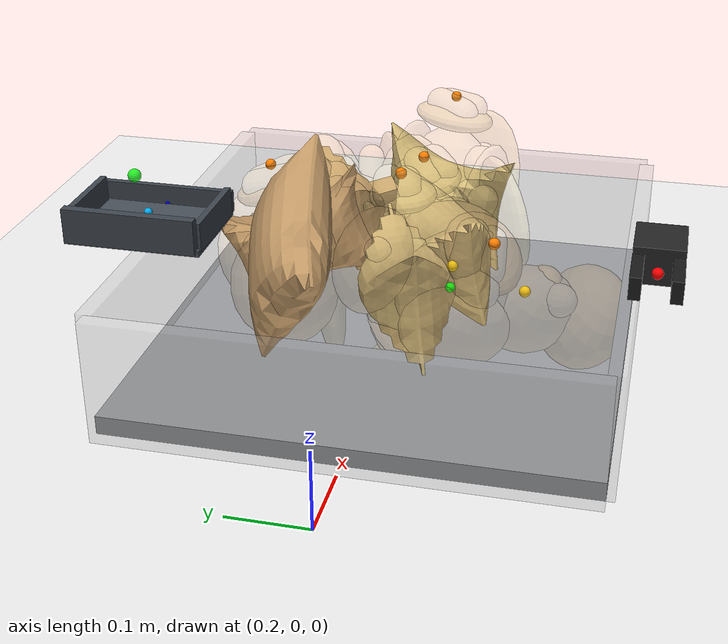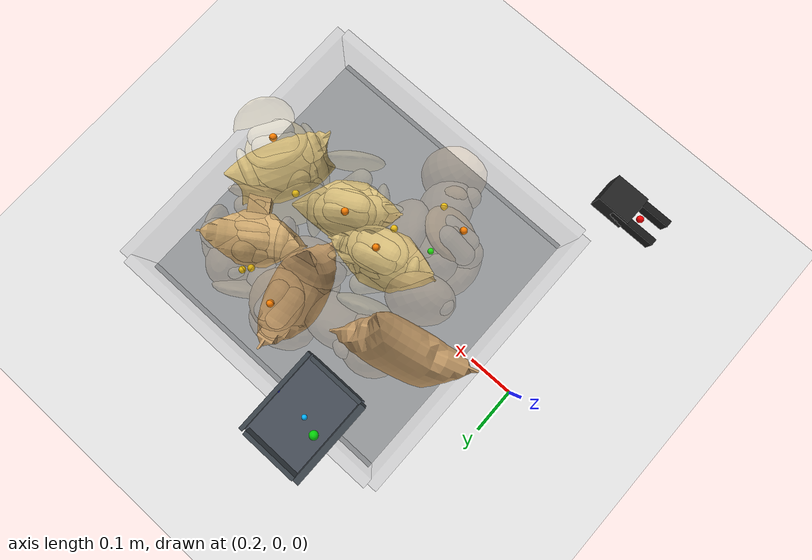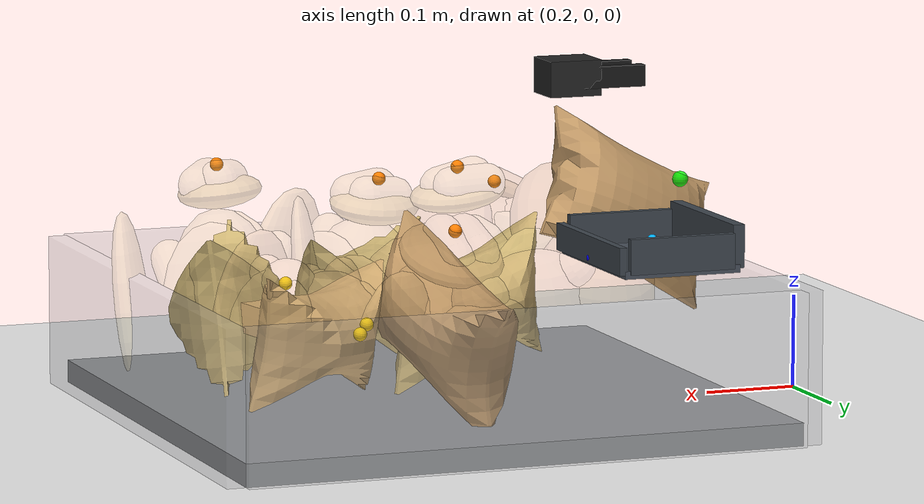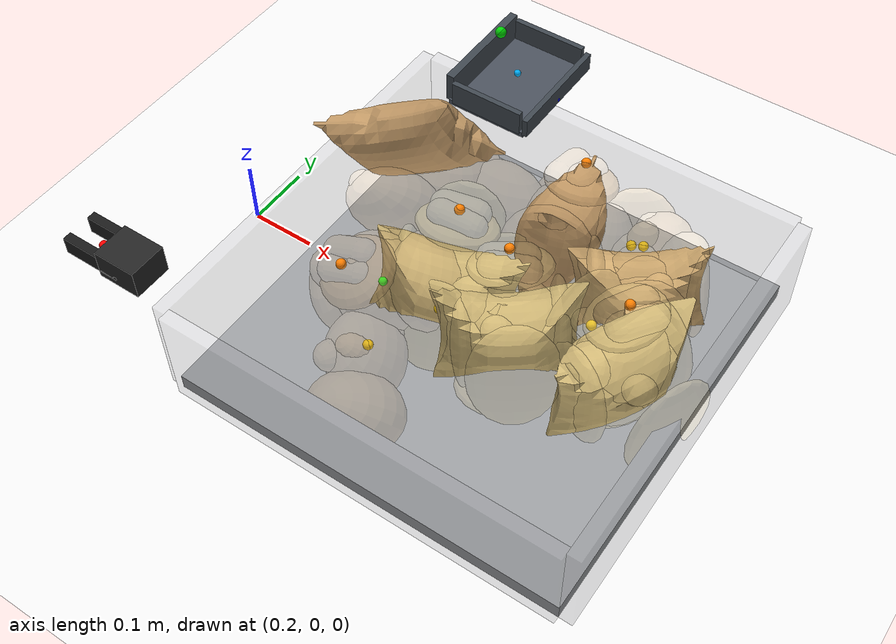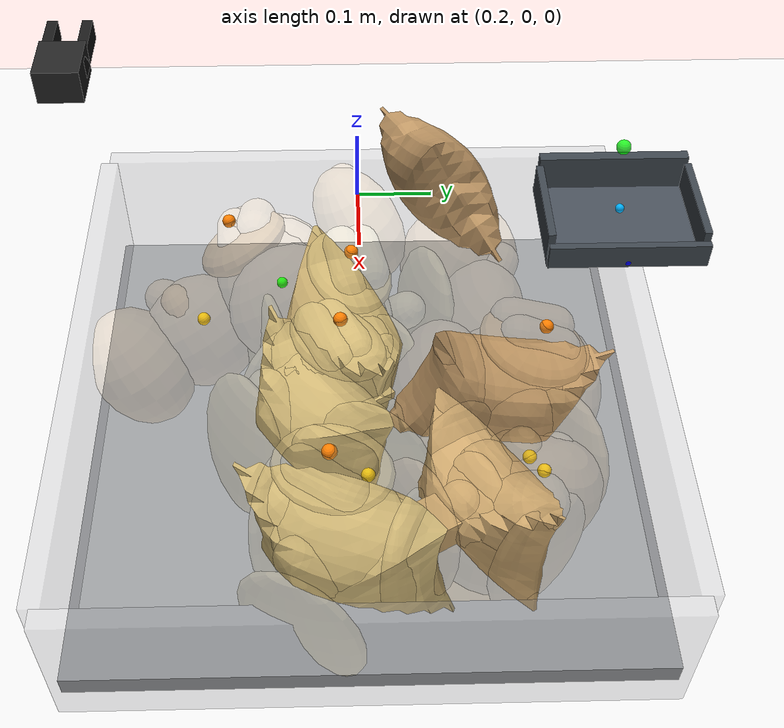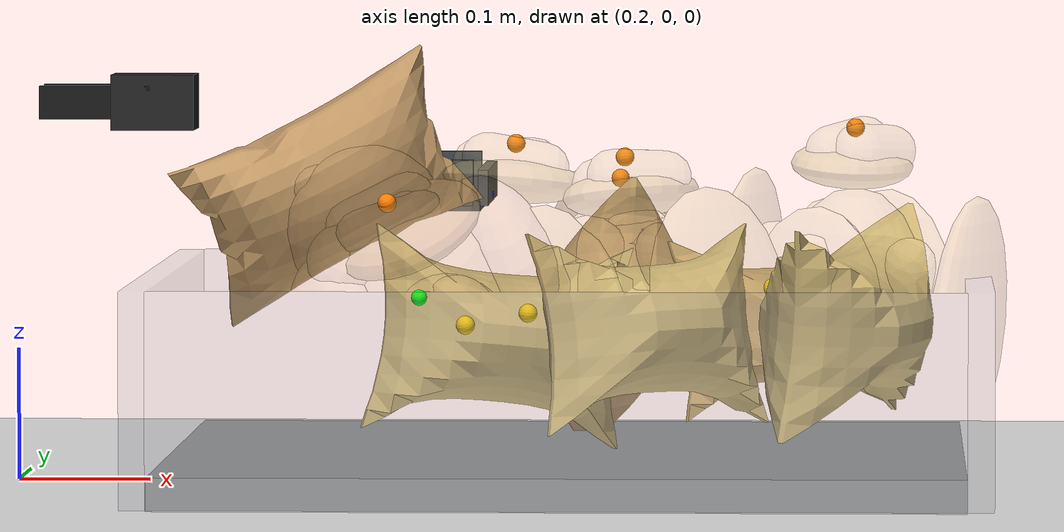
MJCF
<mujoco model="eccentric_fill_seed11">
  <compiler angle="radian" coordinate="local" inertiafromgeom="true" meshdir="D:/Michael/2025/01.Research/01.Parceldetection/16.Pybullet/bullet3-master (1)/bullet3-master/examples/pybullet/examples/DeformableTest/Sackcodex2/object"/>
  <option timestep="0.002" gravity="0 0 -9.81" integrator="implicitfast" iterations="100" tolerance="1e-8"/>
  <size memory="768M" nconmax="12000"/>

  <visual>
    <global azimuth="128" elevation="-20" offwidth="1280" offheight="720"/>
    <headlight ambient="0.34 0.34 0.34" diffuse="0.78 0.78 0.78" specular="0.15 0.15 0.15"/>
    <rgba haze="0.11 0.13 0.18 1"/>
  </visual>

  <default>
    <geom condim="4" friction="1.15 0.03 0.01" margin="0.003" solimp="0.93 0.98 0.003" solref="0.012 1"/>
    <joint damping="1.2" armature="0.002"/>
    <position kp="2500" forcelimited="true" forcerange="-420 420"/>
    <motor ctrllimited="true"/>
  </default>

  <asset>
    <mesh name="sack_0_visual_mesh" file="sack6Apply.obj" scale="0.0774 0.0774 0.0817"/>
    <mesh name="sack_1_visual_mesh" file="sack10.obj" scale="0.0697 0.0697 0.0726"/>
    <mesh name="sack_2_visual_mesh" file="sack3.obj" scale="0.0773 0.0773 0.0816"/>
    <mesh name="sack_3_visual_mesh" file="sack8.obj" scale="0.0753 0.0753 0.0807"/>
    <mesh name="sack_4_visual_mesh" file="sack9.obj" scale="0.0739 0.0739 0.0798"/>
    <mesh name="sack_5_visual_mesh" file="sack8.obj" scale="0.0764 0.0764 0.0839"/>
  </asset>

  <worldbody>
    <light name="key" pos="0.85 0.15 1.8" dir="-0.2 -0.1 -1" directional="true"/>
    <geom name="floor" type="plane" size="2 2 0.1" rgba="0.93 0.93 0.93 1"/>
    <geom name="work_pad" type="box" pos="0.62 0 0.012" size="0.30 0.30 0.012" rgba="0.60 0.61 0.62 1" friction="1.4 0.05 0.01"/>
    <geom name="corral_front" type="box" pos="0.93 0.00 0.08" size="0.010 0.30 0.08" rgba="0.55 0.55 0.58 0.22" friction="1.0 0.03 0.01"/>
    <geom name="corral_back" type="box" pos="0.31 0.00 0.08" size="0.010 0.30 0.08" rgba="0.55 0.55 0.58 0.18" friction="1.0 0.03 0.01"/>
    <geom name="corral_left" type="box" pos="0.62 0.30 0.08" size="0.30 0.010 0.08" rgba="0.55 0.55 0.58 0.14" friction="1.0 0.03 0.01"/>
    <geom name="corral_right" type="box" pos="0.62 -0.30 0.08" size="0.30 0.010 0.08" rgba="0.55 0.55 0.58 0.14" friction="1.0 0.03 0.01"/>
    <camera name="overview" pos="1.22 0.00 0.92" xyaxes="0 1 0 -0.46 0 0.88"/>

    <body name="gripper_mocap" mocap="true" pos="0.36 -0.33 0.30" quat="0.707107 0 -0.707107 0"/>
    <body name="scoop_mocap" mocap="true" pos="0.42 0.28 0.20" quat="1 0 0 0"/>

    <body name="gripper_ctrl_base" pos="0.36 -0.33 0.30">
      <inertial pos="0 0 0" mass="0.001" diaginertia="1e-6 1e-6 1e-6"/>
      <joint name="gripper_ctrl_x" type="slide" axis="1 0 0" limited="true" range="0.20 1.00"/>
      <body name="gripper_ctrl_y_body">
        <inertial pos="0 0 0" mass="0.001" diaginertia="1e-6 1e-6 1e-6"/>
        <joint name="gripper_ctrl_y" type="slide" axis="0 1 0" limited="true" range="-0.60 0.60"/>
        <body name="gripper_ctrl_z_body">
          <inertial pos="0 0 0" mass="0.001" diaginertia="1e-6 1e-6 1e-6"/>
          <joint name="gripper_ctrl_z" type="slide" axis="0 0 1" limited="true" range="0.04 0.70"/>
          <body name="gripper_ctrl_yaw_body">
            <inertial pos="0 0 0" mass="0.001" diaginertia="1e-6 1e-6 1e-6"/>
            <joint name="gripper_ctrl_yaw" type="hinge" axis="0 0 1" limited="true" range="-3.1416 3.1416"/>
            <body name="gripper_ctrl_pitch_body">
              <inertial pos="0 0 0" mass="0.001" diaginertia="1e-6 1e-6 1e-6"/>
              <joint name="gripper_ctrl_pitch" type="hinge" axis="0 1 0" limited="true" range="-3.1416 3.1416"/>
              <body name="gripper_ctrl_roll_body">
                <inertial pos="0 0 0" mass="0.001" diaginertia="1e-6 1e-6 1e-6"/>
                <joint name="gripper_ctrl_roll" type="hinge" axis="1 0 0" limited="true" range="-3.1416 3.1416"/>
              </body>
            </body>
          </body>
        </body>
      </body>
    </body>

    <body name="scoop_ctrl_base" pos="0.42 0.28 0.20">
      <inertial pos="0 0 0" mass="0.001" diaginertia="1e-6 1e-6 1e-6"/>
      <joint name="scoop_ctrl_x" type="slide" axis="1 0 0" limited="true" range="0.20 1.00"/>
      <body name="scoop_ctrl_y_body">
        <inertial pos="0 0 0" mass="0.001" diaginertia="1e-6 1e-6 1e-6"/>
        <joint name="scoop_ctrl_y" type="slide" axis="0 1 0" limited="true" range="-0.60 0.60"/>
        <body name="scoop_ctrl_z_body">
          <inertial pos="0 0 0" mass="0.001" diaginertia="1e-6 1e-6 1e-6"/>
          <joint name="scoop_ctrl_z" type="slide" axis="0 0 1" limited="true" range="0.04 0.70"/>
          <body name="scoop_ctrl_yaw_body">
            <inertial pos="0 0 0" mass="0.001" diaginertia="1e-6 1e-6 1e-6"/>
            <joint name="scoop_ctrl_yaw" type="hinge" axis="0 0 1" limited="true" range="-3.1416 3.1416"/>
            <body name="scoop_ctrl_pitch_body">
              <inertial pos="0 0 0" mass="0.001" diaginertia="1e-6 1e-6 1e-6"/>
              <joint name="scoop_ctrl_pitch" type="hinge" axis="0 1 0" limited="true" range="-3.1416 3.1416"/>
              <body name="scoop_ctrl_roll_body">
                <inertial pos="0 0 0" mass="0.001" diaginertia="1e-6 1e-6 1e-6"/>
                <joint name="scoop_ctrl_roll" type="hinge" axis="1 0 0" limited="true" range="-3.1416 3.1416"/>
              </body>
            </body>
          </body>
        </body>
      </body>
    </body>

    <body name="gripper_tool" pos="0.36 -0.33 0.30" quat="0.707107 0 -0.707107 0">
      <freejoint name="gripper_tool_free"/>
      <inertial pos="0 0 0.04" mass="0.08" diaginertia="0.0002 0.0002 0.0002"/>
      <geom name="gripper_palm" type="box" pos="0 0 0.030" size="0.020 0.026 0.030" rgba="0.14 0.14 0.14 1"/>
      <body name="left_finger_body" pos="0 0 0.072">
        <joint name="left_finger_slide" type="slide" axis="0 1 0" limited="true" range="0.010 0.040" damping="12"/>
        <geom name="left_finger_geom" type="box" pos="0 0.020 0" size="0.012 0.006 0.040" rgba="0.10 0.10 0.10 1" friction="2.2 0.05 0.01"/>
      </body>
      <body name="right_finger_body" pos="0 0 0.072">
        <joint name="right_finger_slide" type="slide" axis="0 -1 0" limited="true" range="0.010 0.040" damping="12"/>
        <geom name="right_finger_geom" type="box" pos="0 -0.020 0" size="0.012 0.006 0.040" rgba="0.10 0.10 0.10 1" friction="2.2 0.05 0.01"/>
      </body>
      <site name="gripper_pinch_site" pos="0 0 0.074" size="0.006" rgba="1 0 0 1"/>
    </body>

    <body name="scoop_tool" pos="0.42 0.28 0.20" quat="1 0 0 0">
      <freejoint name="scoop_tool_free"/>
      <inertial pos="0 0 0.02" mass="0.10" diaginertia="0.0003 0.0003 0.0003"/>
      <geom name="scoop_plate" type="box" pos="0.062 0 0" size="0.062 0.085 0.004" rgba="0.28 0.31 0.35 1" friction="1.7 0.05 0.01"/>
      <geom name="scoop_lip" type="box" pos="0.126 0 0.014" size="0.004 0.085 0.014" rgba="0.24 0.27 0.30 1" friction="1.7 0.05 0.01"/>
      <geom name="scoop_left_rail" type="box" pos="0.062 0.082 0.018" size="0.056 0.004 0.018" rgba="0.24 0.27 0.30 1"/>
      <geom name="scoop_right_rail" type="box" pos="0.062 -0.082 0.018" size="0.056 0.004 0.018" rgba="0.24 0.27 0.30 1"/>
      <geom name="scoop_backstop" type="box" pos="0.000 0 0.022" size="0.006 0.082 0.022" rgba="0.24 0.27 0.30 1"/>
      <site name="scoop_tip_site" pos="0.126 0 0.005" size="0.005" rgba="0 0 1 1"/>
      <site name="scoop_center_site" pos="0.060 0 0.020" size="0.005" rgba="0 0.7 1 1"/>
      <site name="score_overlay_site" pos="0.030 0 0.080" size="0.008" rgba="0 1 0 0.8"/>
    </body>

    <body name="sack_0" pos="0.6456 0.1367 0.1195" euler="-0.3718 -0.0005 1.7669">
      <freejoint name="sack_0_free"/>

      <geom name="sack_0_visual" type="mesh" mesh="sack_0_visual_mesh" rgba="0.760 0.600 0.400 0.92" contype="0" conaffinity="0"/>
      <site name="sack_0_center_site" pos="0 0 0.000" size="0.006" rgba="0 1 0 1"/>
      <site name="sack_0_top_site" pos="-0.0000 -0.0088 0.1115" size="0.007" rgba="1 0.5 0 1"/>
      <site name="sack_0_side_site" pos="-0.0000 -0.0998 0.018" size="0.007" rgba="1 0.8 0 1"/>

      <geom name="sack_0_core_geom" type="ellipsoid" pos="0 0 0.0059" size="0.0438 0.0350 0.0759" mass="0.9483" rgba="0.760 0.600 0.400 0.12" friction="1.0 0.03 0.01"/>
      <geom name="sack_0_core_front" type="capsule" fromto="-0.0240 0 -0.0180 0.0500 0 0.0580" size="0.0295" mass="0.2258" rgba="0.760 0.600 0.400 0.10"/>
      <geom name="sack_0_core_left" type="capsule" fromto="-0.016 0.0691 -0.012 0.020 0.1348 0.054" size="0.0211" mass="0.4064" rgba="0.760 0.600 0.400 0.10"/>
      <geom name="sack_0_core_right" type="capsule" fromto="-0.016 -0.0691 -0.012 0.020 -0.1348 0.054" size="0.0188" mass="0.4064" rgba="0.760 0.600 0.400 0.10"/>

      <!-- 자루의 외형은 둥근 shell lobe로 보이게 하고, contact proxy는 반투명하게 숨긴다. -->
      <geom name="sack_0_shell_main_visual" type="ellipsoid" pos="-0.0000 -0.0047 -0.0028" size="0.0722 0.0663 0.0806" rgba="0.760 0.600 0.400 0.16" contype="0" conaffinity="0"/>
      <geom name="sack_0_shell_left_visual" type="ellipsoid" pos="0.0040 0.0953 0.0020" size="0.0491 0.0743 0.0661" rgba="0.760 0.600 0.400 0.14" contype="0" conaffinity="0"/>
      <geom name="sack_0_shell_right_visual" type="ellipsoid" pos="0.0040 -0.0605 0.0000" size="0.0462 0.0405 0.0645" rgba="0.760 0.600 0.400 0.12" contype="0" conaffinity="0"/>
      <geom name="sack_0_top_left_crown_visual" type="capsule" fromto="-0.0230 0.0173 0.0917 0.0230 0.0086 0.0957" size="0.0207" rgba="0.760 0.600 0.400 0.14" contype="0" conaffinity="0"/>
      <geom name="sack_0_top_right_crown_visual" type="capsule" fromto="-0.0230 -0.0086 0.0957 0.0230 -0.0173 0.0917" size="0.0207" rgba="0.760 0.600 0.400 0.14" contype="0" conaffinity="0"/>

      <body name="sack_0_bottom_support_proxy_body" pos="-0.0000 -0.0161 -0.0782">
        <joint name="sack_0_bottom_x" type="slide" axis="1 0 0" limited="true" range="-0.012 0.012" damping="18" stiffness="475.7"/>
        <joint name="sack_0_bottom_y" type="slide" axis="0 1 0" limited="true" range="-0.012 0.012" damping="18" stiffness="475.7"/>
        <joint name="sack_0_bottom_z" type="slide" axis="0 0 1" limited="true" range="-0.008 0.020" damping="24" stiffness="585.9"/>
        <geom name="sack_0_bottom_support_proxy" type="ellipsoid" size="0.0732 0.0680 0.0135" mass="0.1806" rgba="0.760 0.600 0.400 0.10" friction="1.55 0.05 0.01"/>
        <geom name="sack_0_bottom_deform_visual" type="ellipsoid" size="0.0780 0.0740 0.0175" rgba="0.760 0.600 0.400 0.22" contype="0" conaffinity="0"/>
      </body>

      <body name="sack_0_top_grasp_proxy_body" pos="-0.0000 -0.0093 0.0835">
        <joint name="sack_0_top_x" type="slide" axis="1 0 0" limited="true" range="-0.018 0.018" damping="12" stiffness="182.8"/>
        <joint name="sack_0_top_y" type="slide" axis="0 1 0" limited="true" range="-0.018 0.018" damping="12" stiffness="182.8"/>
        <joint name="sack_0_top_z" type="slide" axis="0 0 1" limited="true" range="-0.040 0.010" damping="14" stiffness="135.2"/>
        <geom name="sack_0_top_grasp_proxy" type="ellipsoid" size="0.0576 0.0480 0.0151" mass="0.1355" rgba="0.760 0.600 0.400 0.10" friction="2.2 0.05 0.01"/>
        <geom name="sack_0_top_deform_visual" type="ellipsoid" size="0.0599 0.0519 0.0198" rgba="0.760 0.600 0.400 0.36" contype="0" conaffinity="0"/>
        <geom name="sack_0_top_fold_left_visual" type="capsule" fromto="-0.0276 0.0135 0.000 0.0058 0.0038 0.0121" size="0.0149" rgba="0.760 0.600 0.400 0.26" contype="0" conaffinity="0"/>
        <geom name="sack_0_top_fold_right_visual" type="capsule" fromto="-0.0069 -0.0038 0.0121 0.0276 -0.0135 0.000" size="0.0149" rgba="0.760 0.600 0.400 0.26" contype="0" conaffinity="0"/>
      </body>

      <body name="sack_0_left_side_proxy_body" pos="-0.0000 0.1733 0.010">
        <joint name="sack_0_left_side_slide" type="slide" axis="0 -1 0" limited="true" range="-0.028 0.016" damping="16" stiffness="240.1"/>
        <geom name="sack_0_left_side_proxy" type="ellipsoid" size="0.0636 0.0597 0.0702" mass="0.1355" rgba="0.760 0.600 0.400 0.08" friction="1.25 0.04 0.01"/>
        <geom name="sack_0_left_side_deform_visual" type="ellipsoid" size="0.0655 0.0645 0.0716" rgba="0.760 0.600 0.400 0.24" contype="0" conaffinity="0"/>
      </body>

      <body name="sack_0_right_side_proxy_body" pos="-0.0000 -0.1386 0.010">
        <joint name="sack_0_right_side_slide" type="slide" axis="0 1 0" limited="true" range="-0.028 0.016" damping="16" stiffness="222.5"/>
        <geom name="sack_0_right_side_proxy" type="ellipsoid" size="0.0610 0.0465 0.0688" mass="0.1355" rgba="0.760 0.600 0.400 0.08" friction="1.25 0.04 0.01"/>
        <geom name="sack_0_right_side_deform_visual" type="ellipsoid" size="0.0630 0.0513 0.0702" rgba="0.760 0.600 0.400 0.24" contype="0" conaffinity="0"/>
      </body>

      <body name="sack_0_front_proxy_body" pos="0.0676 -0.0015 0.000">
        <joint name="sack_0_front_slide" type="slide" axis="-1 0 0" limited="true" range="-0.022 0.012" damping="15" stiffness="227.9"/>
        <geom name="sack_0_front_support_proxy" type="ellipsoid" size="0.0458 0.0660 0.0662" mass="0.1129" rgba="0.760 0.600 0.400 0.08" friction="1.20 0.04 0.01"/>
        <geom name="sack_0_front_deform_visual" type="ellipsoid" size="0.0467 0.0674 0.0675" rgba="0.760 0.600 0.400 0.20" contype="0" conaffinity="0"/>
      </body>

      <body name="sack_0_back_proxy_body" pos="-0.0676 -0.0015 0.000">
        <joint name="sack_0_back_slide" type="slide" axis="1 0 0" limited="true" range="-0.022 0.012" damping="15" stiffness="210.3"/>
        <geom name="sack_0_back_support_proxy" type="ellipsoid" size="0.0421 0.0660 0.0662" mass="0.1129" rgba="0.760 0.600 0.400 0.08" friction="1.20 0.04 0.01"/>
        <geom name="sack_0_back_deform_visual" type="ellipsoid" size="0.0440 0.0674 0.0675" rgba="0.760 0.600 0.400 0.20" contype="0" conaffinity="0"/>
      </body>

      <body name="sack_0_shape_proxy_body" pos="-0.0000 -0.1237 0.0308">
        <joint name="sack_0_bulge_y" type="slide" axis="0 1 0" limited="true" range="-0.020 0.020" damping="8" stiffness="89.5"/>
        <joint name="sack_0_bulge_z" type="slide" axis="0 0 1" limited="true" range="-0.014 0.028" damping="8" stiffness="92.1"/>
        <geom name="sack_0_shape_proxy" type="ellipsoid" size="0.0253 0.0225 0.0311" mass="0.0903" rgba="0.760 0.600 0.400 0.10"/>
        <geom name="sack_0_shape_deform_visual" type="ellipsoid" size="0.0296 0.0270 0.0358" rgba="0.760 0.600 0.400 0.32" contype="0" conaffinity="0"/>
      </body>
    </body>

    <body name="sack_1" pos="0.7807 0.1162 0.1129" euler="-0.1040 -0.1055 0.5715">
      <freejoint name="sack_1_free"/>

      <geom name="sack_1_visual" type="mesh" mesh="sack_1_visual_mesh" rgba="0.820 0.670 0.440 0.92" contype="0" conaffinity="0"/>
      <site name="sack_1_center_site" pos="0 0 0.000" size="0.006" rgba="0 1 0 1"/>
      <site name="sack_1_top_site" pos="0.0047 0.0055 0.0125" size="0.007" rgba="1 0.5 0 1"/>
      <site name="sack_1_side_site" pos="0.0116 0.0613 0.018" size="0.007" rgba="1 0.8 0 1"/>

      <geom name="sack_1_core_geom" type="ellipsoid" pos="0 0 0.0055" size="0.0454 0.0366 0.0641" mass="0.7790" rgba="0.820 0.670 0.440 0.12" friction="1.0 0.03 0.01"/>
      <geom name="sack_1_core_front" type="capsule" fromto="-0.0124 0 -0.0180 0.0616 0 0.0580" size="0.0291" mass="0.1855" rgba="0.820 0.670 0.440 0.10"/>
      <geom name="sack_1_core_left" type="capsule" fromto="-0.016 0.0361 -0.012 0.020 0.0593 0.054" size="0.0201" mass="0.3339" rgba="0.820 0.670 0.440 0.10"/>
      <geom name="sack_1_core_right" type="capsule" fromto="-0.016 -0.0361 -0.012 0.020 -0.0593 0.054" size="0.0181" mass="0.3339" rgba="0.820 0.670 0.440 0.10"/>

      <!-- 자루의 외형은 둥근 shell lobe로 보이게 하고, contact proxy는 반투명하게 숨긴다. -->
      <geom name="sack_1_shell_main_visual" type="ellipsoid" pos="0.0058 -0.0009 -0.0272" size="0.0687 0.0573 0.0890" rgba="0.820 0.670 0.440 0.16" contype="0" conaffinity="0"/>
      <geom name="sack_1_shell_left_visual" type="ellipsoid" pos="0.0040 0.0275 0.0020" size="0.0467 0.0224 0.0730" rgba="0.820 0.670 0.440 0.14" contype="0" conaffinity="0"/>
      <geom name="sack_1_shell_right_visual" type="ellipsoid" pos="0.0040 -0.0198 0.0000" size="0.0440 0.0169 0.0712" rgba="0.820 0.670 0.440 0.12" contype="0" conaffinity="0"/>
      <geom name="sack_1_top_left_crown_visual" type="capsule" fromto="-0.0216 0.0136 -0.0265 0.0216 0.0068 -0.0225" size="0.0204" rgba="0.820 0.670 0.440 0.14" contype="0" conaffinity="0"/>
      <geom name="sack_1_top_right_crown_visual" type="capsule" fromto="-0.0216 -0.0068 -0.0225 0.0216 -0.0136 -0.0265" size="0.0204" rgba="0.820 0.670 0.440 0.14" contype="0" conaffinity="0"/>

      <body name="sack_1_bottom_support_proxy_body" pos="0.0021 -0.0154 -0.0883">
        <joint name="sack_1_bottom_x" type="slide" axis="1 0 0" limited="true" range="-0.012 0.012" damping="18" stiffness="462.3"/>
        <joint name="sack_1_bottom_y" type="slide" axis="0 1 0" limited="true" range="-0.012 0.012" damping="18" stiffness="462.3"/>
        <joint name="sack_1_bottom_z" type="slide" axis="0 0 1" limited="true" range="-0.008 0.020" damping="24" stiffness="569.5"/>
        <geom name="sack_1_bottom_support_proxy" type="ellipsoid" size="0.0700 0.0578 0.0139" mass="0.1484" rgba="0.820 0.670 0.440 0.10" friction="1.55 0.05 0.01"/>
        <geom name="sack_1_bottom_deform_visual" type="ellipsoid" size="0.0746 0.0638 0.0181" rgba="0.820 0.670 0.440 0.22" contype="0" conaffinity="0"/>
      </body>

      <body name="sack_1_top_grasp_proxy_body" pos="0.0116 0.0054 -0.0155">
        <joint name="sack_1_top_x" type="slide" axis="1 0 0" limited="true" range="-0.018 0.018" damping="12" stiffness="177.6"/>
        <joint name="sack_1_top_y" type="slide" axis="0 1 0" limited="true" range="-0.018 0.018" damping="12" stiffness="177.6"/>
        <joint name="sack_1_top_z" type="slide" axis="0 0 1" limited="true" range="-0.040 0.010" damping="14" stiffness="130.8"/>
        <geom name="sack_1_top_grasp_proxy" type="ellipsoid" size="0.0541 0.0378 0.0308" mass="0.1113" rgba="0.820 0.670 0.440 0.10" friction="2.2 0.05 0.01"/>
        <geom name="sack_1_top_deform_visual" type="ellipsoid" size="0.0562 0.0408 0.0390" rgba="0.820 0.670 0.440 0.36" contype="0" conaffinity="0"/>
        <geom name="sack_1_top_fold_left_visual" type="capsule" fromto="-0.0260 0.0106 0.000 0.0054 0.0030 0.0225" size="0.0147" rgba="0.820 0.670 0.440 0.26" contype="0" conaffinity="0"/>
        <geom name="sack_1_top_fold_right_visual" type="capsule" fromto="-0.0065 -0.0030 0.0225 0.0260 -0.0106 0.000" size="0.0147" rgba="0.820 0.670 0.440 0.26" contype="0" conaffinity="0"/>
      </body>

      <body name="sack_1_left_side_proxy_body" pos="0.0019 0.0953 0.010">
        <joint name="sack_1_left_side_slide" type="slide" axis="0 -1 0" limited="true" range="-0.028 0.016" damping="16" stiffness="229.7"/>
        <geom name="sack_1_left_side_proxy" type="ellipsoid" size="0.0601 0.0172 0.0803" mass="0.1113" rgba="0.820 0.670 0.440 0.08" friction="1.25 0.04 0.01"/>
        <geom name="sack_1_left_side_deform_visual" type="ellipsoid" size="0.0619 0.0186 0.0819" rgba="0.820 0.670 0.440 0.24" contype="0" conaffinity="0"/>
      </body>

      <body name="sack_1_right_side_proxy_body" pos="0.0019 -0.0876 0.010">
        <joint name="sack_1_right_side_slide" type="slide" axis="0 1 0" limited="true" range="-0.028 0.016" damping="16" stiffness="213.0"/>
        <geom name="sack_1_right_side_proxy" type="ellipsoid" size="0.0577 0.0134 0.0787" mass="0.1113" rgba="0.820 0.670 0.440 0.08" friction="1.25 0.04 0.01"/>
        <geom name="sack_1_right_side_deform_visual" type="ellipsoid" size="0.0595 0.0148 0.0803" rgba="0.820 0.670 0.440 0.24" contype="0" conaffinity="0"/>
      </body>

      <body name="sack_1_front_proxy_body" pos="0.0757 -0.0003 0.000">
        <joint name="sack_1_front_slide" type="slide" axis="-1 0 0" limited="true" range="-0.022 0.012" damping="15" stiffness="221.1"/>
        <geom name="sack_1_front_support_proxy" type="ellipsoid" size="0.0175 0.0558 0.0763" mass="0.0927" rgba="0.820 0.670 0.440 0.08" friction="1.20 0.04 0.01"/>
        <geom name="sack_1_front_deform_visual" type="ellipsoid" size="0.0178 0.0569 0.0778" rgba="0.820 0.670 0.440 0.20" contype="0" conaffinity="0"/>
      </body>

      <body name="sack_1_back_proxy_body" pos="-0.0594 -0.0003 0.000">
        <joint name="sack_1_back_slide" type="slide" axis="1 0 0" limited="true" range="-0.022 0.012" damping="15" stiffness="204.4"/>
        <geom name="sack_1_back_support_proxy" type="ellipsoid" size="0.0161 0.0558 0.0763" mass="0.0927" rgba="0.820 0.670 0.440 0.08" friction="1.20 0.04 0.01"/>
        <geom name="sack_1_back_deform_visual" type="ellipsoid" size="0.0168 0.0569 0.0778" rgba="0.820 0.670 0.440 0.20" contype="0" conaffinity="0"/>
      </body>

      <body name="sack_1_shape_proxy_body" pos="0.0070 0.0249 0.0347">
        <joint name="sack_1_bulge_y" type="slide" axis="0 1 0" limited="true" range="-0.020 0.020" damping="8" stiffness="98.5"/>
        <joint name="sack_1_bulge_z" type="slide" axis="0 0 1" limited="true" range="-0.014 0.028" damping="8" stiffness="98.9"/>
        <geom name="sack_1_shape_proxy" type="ellipsoid" size="0.0241 0.0203 0.0468" mass="0.0742" rgba="0.820 0.670 0.440 0.10"/>
        <geom name="sack_1_shape_deform_visual" type="ellipsoid" size="0.0282 0.0243 0.0550" rgba="0.820 0.670 0.440 0.32" contype="0" conaffinity="0"/>
      </body>
    </body>

    <body name="sack_2" pos="0.5099 -0.0887 0.1442" euler="0.5463 -0.3105 -2.7217">
      <freejoint name="sack_2_free"/>

      <geom name="sack_2_visual" type="mesh" mesh="sack_2_visual_mesh" rgba="0.760 0.600 0.400 0.92" contype="0" conaffinity="0"/>
      <site name="sack_2_center_site" pos="0 0 0.000" size="0.006" rgba="0 1 0 1"/>
      <site name="sack_2_top_site" pos="-0.0037 0.0102 0.0931" size="0.007" rgba="1 0.5 0 1"/>
      <site name="sack_2_side_site" pos="-0.0092 0.0931 0.018" size="0.007" rgba="1 0.8 0 1"/>

      <geom name="sack_2_core_geom" type="ellipsoid" pos="0 0 0.0058" size="0.0438 0.0350 0.0758" mass="0.9789" rgba="0.760 0.600 0.400 0.12" friction="1.0 0.03 0.01"/>
      <geom name="sack_2_core_front" type="capsule" fromto="-0.0332 0 -0.0180 0.0408 0 0.0580" size="0.0295" mass="0.2331" rgba="0.760 0.600 0.400 0.10"/>
      <geom name="sack_2_core_left" type="capsule" fromto="-0.016 0.0619 -0.012 0.020 0.1184 0.054" size="0.0209" mass="0.4195" rgba="0.760 0.600 0.400 0.10"/>
      <geom name="sack_2_core_right" type="capsule" fromto="-0.016 -0.0619 -0.012 0.020 -0.1184 0.054" size="0.0187" mass="0.4195" rgba="0.760 0.600 0.400 0.10"/>

      <!-- 자루의 외형은 둥근 shell lobe로 보이게 하고, contact proxy는 반투명하게 숨긴다. -->
      <geom name="sack_2_shell_main_visual" type="ellipsoid" pos="-0.0046 0.0069 -0.0046" size="0.0722 0.0658 0.0781" rgba="0.760 0.600 0.400 0.16" contype="0" conaffinity="0"/>
      <geom name="sack_2_shell_left_visual" type="ellipsoid" pos="0.0040 0.1023 0.0020" size="0.0491 0.0630 0.0641" rgba="0.760 0.600 0.400 0.14" contype="0" conaffinity="0"/>
      <geom name="sack_2_shell_right_visual" type="ellipsoid" pos="0.0040 -0.0300 0.0000" size="0.0462 0.0354 0.0625" rgba="0.760 0.600 0.400 0.12" contype="0" conaffinity="0"/>
      <geom name="sack_2_top_left_crown_visual" type="capsule" fromto="-0.0230 0.0171 0.0719 0.0230 0.0085 0.0759" size="0.0207" rgba="0.760 0.600 0.400 0.14" contype="0" conaffinity="0"/>
      <geom name="sack_2_top_right_crown_visual" type="capsule" fromto="-0.0230 -0.0085 0.0759 0.0230 -0.0171 0.0719" size="0.0207" rgba="0.760 0.600 0.400 0.14" contype="0" conaffinity="0"/>

      <body name="sack_2_bottom_support_proxy_body" pos="-0.0017 -0.0051 -0.0753">
        <joint name="sack_2_bottom_x" type="slide" axis="1 0 0" limited="true" range="-0.012 0.012" damping="18" stiffness="474.8"/>
        <joint name="sack_2_bottom_y" type="slide" axis="0 1 0" limited="true" range="-0.012 0.012" damping="18" stiffness="474.8"/>
        <joint name="sack_2_bottom_z" type="slide" axis="0 0 1" limited="true" range="-0.008 0.020" damping="24" stiffness="584.8"/>
        <geom name="sack_2_bottom_support_proxy" type="ellipsoid" size="0.0732 0.0675 0.0135" mass="0.1865" rgba="0.760 0.600 0.400 0.10" friction="1.55 0.05 0.01"/>
        <geom name="sack_2_bottom_deform_visual" type="ellipsoid" size="0.0780 0.0735 0.0176" rgba="0.760 0.600 0.400 0.22" contype="0" conaffinity="0"/>
      </body>

      <body name="sack_2_top_grasp_proxy_body" pos="-0.0092 0.0109 0.0651">
        <joint name="sack_2_top_x" type="slide" axis="1 0 0" limited="true" range="-0.018 0.018" damping="12" stiffness="182.4"/>
        <joint name="sack_2_top_y" type="slide" axis="0 1 0" limited="true" range="-0.018 0.018" damping="12" stiffness="182.4"/>
        <joint name="sack_2_top_z" type="slide" axis="0 0 1" limited="true" range="-0.040 0.010" damping="14" stiffness="134.9"/>
        <geom name="sack_2_top_grasp_proxy" type="ellipsoid" size="0.0576 0.0475 0.0163" mass="0.1398" rgba="0.760 0.600 0.400 0.10" friction="2.2 0.05 0.01"/>
        <geom name="sack_2_top_deform_visual" type="ellipsoid" size="0.0599 0.0513 0.0212" rgba="0.760 0.600 0.400 0.36" contype="0" conaffinity="0"/>
        <geom name="sack_2_top_fold_left_visual" type="capsule" fromto="-0.0276 0.0133 0.000 0.0058 0.0038 0.0128" size="0.0149" rgba="0.760 0.600 0.400 0.26" contype="0" conaffinity="0"/>
        <geom name="sack_2_top_fold_right_visual" type="capsule" fromto="-0.0069 -0.0038 0.0128 0.0276 -0.0133 0.000" size="0.0149" rgba="0.760 0.600 0.400 0.26" contype="0" conaffinity="0"/>
      </body>

      <body name="sack_2_left_side_proxy_body" pos="-0.0015 0.1798 0.010">
        <joint name="sack_2_left_side_slide" type="slide" axis="0 -1 0" limited="true" range="-0.028 0.016" damping="16" stiffness="239.3"/>
        <geom name="sack_2_left_side_proxy" type="ellipsoid" size="0.0636 0.0505 0.0673" mass="0.1398" rgba="0.760 0.600 0.400 0.08" friction="1.25 0.04 0.01"/>
        <geom name="sack_2_left_side_deform_visual" type="ellipsoid" size="0.0655 0.0545 0.0686" rgba="0.760 0.600 0.400 0.24" contype="0" conaffinity="0"/>
      </body>

      <body name="sack_2_right_side_proxy_body" pos="-0.0015 -0.1075 0.010">
        <joint name="sack_2_right_side_slide" type="slide" axis="0 1 0" limited="true" range="-0.028 0.016" damping="16" stiffness="221.8"/>
        <geom name="sack_2_right_side_proxy" type="ellipsoid" size="0.0610 0.0394 0.0659" mass="0.1398" rgba="0.760 0.600 0.400 0.08" friction="1.25 0.04 0.01"/>
        <geom name="sack_2_right_side_deform_visual" type="ellipsoid" size="0.0629 0.0434 0.0673" rgba="0.760 0.600 0.400 0.24" contype="0" conaffinity="0"/>
      </body>

      <body name="sack_2_front_proxy_body" pos="0.0583 0.0022 0.000">
        <joint name="sack_2_front_slide" type="slide" axis="-1 0 0" limited="true" range="-0.022 0.012" damping="15" stiffness="227.4"/>
        <geom name="sack_2_front_support_proxy" type="ellipsoid" size="0.0396 0.0655 0.0633" mass="0.1165" rgba="0.760 0.600 0.400 0.08" friction="1.20 0.04 0.01"/>
        <geom name="sack_2_front_deform_visual" type="ellipsoid" size="0.0404 0.0668 0.0645" rgba="0.760 0.600 0.400 0.20" contype="0" conaffinity="0"/>
      </body>

      <body name="sack_2_back_proxy_body" pos="-0.0712 0.0022 0.000">
        <joint name="sack_2_back_slide" type="slide" axis="1 0 0" limited="true" range="-0.022 0.012" damping="15" stiffness="209.9"/>
        <geom name="sack_2_back_support_proxy" type="ellipsoid" size="0.0365 0.0655 0.0633" mass="0.1165" rgba="0.760 0.600 0.400 0.08" friction="1.20 0.04 0.01"/>
        <geom name="sack_2_back_deform_visual" type="ellipsoid" size="0.0381 0.0668 0.0645" rgba="0.760 0.600 0.400 0.20" contype="0" conaffinity="0"/>
      </body>

      <body name="sack_2_shape_proxy_body" pos="-0.0055 0.1051 0.0311">
        <joint name="sack_2_bulge_y" type="slide" axis="0 1 0" limited="true" range="-0.020 0.020" damping="8" stiffness="90.1"/>
        <joint name="sack_2_bulge_z" type="slide" axis="0 0 1" limited="true" range="-0.014 0.028" damping="8" stiffness="92.6"/>
        <geom name="sack_2_shape_proxy" type="ellipsoid" size="0.0250 0.0221 0.0323" mass="0.0932" rgba="0.760 0.600 0.400 0.10"/>
        <geom name="sack_2_shape_deform_visual" type="ellipsoid" size="0.0293 0.0264 0.0372" rgba="0.760 0.600 0.400 0.32" contype="0" conaffinity="0"/>
      </body>
    </body>

    <body name="sack_3" pos="0.5659 -0.0214 0.1102" euler="-0.1006 0.0754 0.3726">
      <freejoint name="sack_3_free"/>

      <geom name="sack_3_visual" type="mesh" mesh="sack_3_visual_mesh" rgba="0.840 0.740 0.480 0.92" contype="0" conaffinity="0"/>
      <site name="sack_3_center_site" pos="0 0 0.000" size="0.006" rgba="0 1 0 1"/>
      <site name="sack_3_top_site" pos="0.0007 -0.0065 0.1479" size="0.007" rgba="1 0.5 0 1"/>
      <site name="sack_3_side_site" pos="0.0017 -0.0622 0.018" size="0.007" rgba="1 0.8 0 1"/>

      <geom name="sack_3_core_geom" type="ellipsoid" pos="0 0 0.0060" size="0.0512 0.0430 0.0882" mass="1.2117" rgba="0.840 0.740 0.480 0.12" friction="1.0 0.03 0.01"/>
      <geom name="sack_3_core_front" type="capsule" fromto="-0.0223 0 -0.0180 0.0517 0 0.0580" size="0.0301" mass="0.2885" rgba="0.840 0.740 0.480 0.10"/>
      <geom name="sack_3_core_left" type="capsule" fromto="-0.016 0.0363 -0.012 0.020 0.0599 0.054" size="0.0201" mass="0.5193" rgba="0.840 0.740 0.480 0.10"/>
      <geom name="sack_3_core_right" type="capsule" fromto="-0.016 -0.0363 -0.012 0.020 -0.0599 0.054" size="0.0181" mass="0.5193" rgba="0.840 0.740 0.480 0.10"/>

      <!-- 자루의 외형은 둥근 shell lobe로 보이게 하고, contact proxy는 반투명하게 숨긴다. -->
      <geom name="sack_3_shell_main_visual" type="ellipsoid" pos="0.0008 -0.0008 0.0008" size="0.0682 0.0572 0.0958" rgba="0.840 0.740 0.480 0.16" contype="0" conaffinity="0"/>
      <geom name="sack_3_shell_left_visual" type="ellipsoid" pos="0.0040 0.0282 0.0020" size="0.0464 0.0228 0.0786" rgba="0.840 0.740 0.480 0.14" contype="0" conaffinity="0"/>
      <geom name="sack_3_shell_right_visual" type="ellipsoid" pos="0.0040 -0.0200 0.0000" size="0.0436 0.0171 0.0767" rgba="0.840 0.740 0.480 0.12" contype="0" conaffinity="0"/>
      <geom name="sack_3_top_left_crown_visual" type="capsule" fromto="-0.0216 0.0139 0.1309 0.0216 0.0069 0.1349" size="0.0196" rgba="0.840 0.740 0.480 0.14" contype="0" conaffinity="0"/>
      <geom name="sack_3_top_right_crown_visual" type="capsule" fromto="-0.0216 -0.0069 0.1349 0.0216 -0.0139 0.1309" size="0.0196" rgba="0.840 0.740 0.480 0.14" contype="0" conaffinity="0"/>

      <body name="sack_3_bottom_support_proxy_body" pos="0.0003 0.0156 -0.0972">
        <joint name="sack_3_bottom_x" type="slide" axis="1 0 0" limited="true" range="-0.012 0.012" damping="18" stiffness="492.4"/>
        <joint name="sack_3_bottom_y" type="slide" axis="0 1 0" limited="true" range="-0.012 0.012" damping="18" stiffness="492.4"/>
        <joint name="sack_3_bottom_z" type="slide" axis="0 0 1" limited="true" range="-0.008 0.020" damping="24" stiffness="606.3"/>
        <geom name="sack_3_bottom_support_proxy" type="ellipsoid" size="0.0700 0.0585 0.0129" mass="0.2308" rgba="0.840 0.740 0.480 0.10" friction="1.55 0.05 0.01"/>
        <geom name="sack_3_bottom_deform_visual" type="ellipsoid" size="0.0745 0.0645 0.0168" rgba="0.840 0.740 0.480 0.22" contype="0" conaffinity="0"/>
      </body>

      <body name="sack_3_top_grasp_proxy_body" pos="0.0017 -0.0066 0.1199">
        <joint name="sack_3_top_x" type="slide" axis="1 0 0" limited="true" range="-0.018 0.018" damping="12" stiffness="189.3"/>
        <joint name="sack_3_top_y" type="slide" axis="0 1 0" limited="true" range="-0.018 0.018" damping="12" stiffness="189.3"/>
        <joint name="sack_3_top_z" type="slide" axis="0 0 1" limited="true" range="-0.040 0.010" damping="14" stiffness="140.8"/>
        <geom name="sack_3_top_grasp_proxy" type="ellipsoid" size="0.0541 0.0385 0.0128" mass="0.1731" rgba="0.840 0.740 0.480 0.10" friction="2.2 0.05 0.01"/>
        <geom name="sack_3_top_deform_visual" type="ellipsoid" size="0.0562 0.0416 0.0170" rgba="0.840 0.740 0.480 0.36" contype="0" conaffinity="0"/>
        <geom name="sack_3_top_fold_left_visual" type="capsule" fromto="-0.0259 0.0108 0.000 0.0054 0.0031 0.0105" size="0.0141" rgba="0.840 0.740 0.480 0.26" contype="0" conaffinity="0"/>
        <geom name="sack_3_top_fold_right_visual" type="capsule" fromto="-0.0065 -0.0031 0.0105 0.0259 -0.0108 0.000" size="0.0141" rgba="0.840 0.740 0.480 0.26" contype="0" conaffinity="0"/>
      </body>

      <body name="sack_3_left_side_proxy_body" pos="0.0003 0.0967 0.010">
        <joint name="sack_3_left_side_slide" type="slide" axis="0 -1 0" limited="true" range="-0.028 0.016" damping="16" stiffness="251.5"/>
        <geom name="sack_3_left_side_proxy" type="ellipsoid" size="0.0601 0.0176 0.0892" mass="0.1731" rgba="0.840 0.740 0.480 0.08" friction="1.25 0.04 0.01"/>
        <geom name="sack_3_left_side_deform_visual" type="ellipsoid" size="0.0619 0.0190 0.0909" rgba="0.840 0.740 0.480 0.24" contype="0" conaffinity="0"/>
      </body>

      <body name="sack_3_right_side_proxy_body" pos="0.0003 -0.0885 0.010">
        <joint name="sack_3_right_side_slide" type="slide" axis="0 1 0" limited="true" range="-0.028 0.016" damping="16" stiffness="233.0"/>
        <geom name="sack_3_right_side_proxy" type="ellipsoid" size="0.0577 0.0137 0.0874" mass="0.1731" rgba="0.840 0.740 0.480 0.08" friction="1.25 0.04 0.01"/>
        <geom name="sack_3_right_side_deform_visual" type="ellipsoid" size="0.0595 0.0151 0.0892" rgba="0.840 0.740 0.480 0.24" contype="0" conaffinity="0"/>
      </body>

      <body name="sack_3_front_proxy_body" pos="0.0657 -0.0003 0.000">
        <joint name="sack_3_front_slide" type="slide" axis="-1 0 0" limited="true" range="-0.022 0.012" damping="15" stiffness="236.2"/>
        <geom name="sack_3_front_support_proxy" type="ellipsoid" size="0.0177 0.0565 0.0852" mass="0.1442" rgba="0.840 0.740 0.480 0.08" friction="1.20 0.04 0.01"/>
        <geom name="sack_3_front_deform_visual" type="ellipsoid" size="0.0181 0.0576 0.0869" rgba="0.840 0.740 0.480 0.20" contype="0" conaffinity="0"/>
      </body>

      <body name="sack_3_back_proxy_body" pos="-0.0634 -0.0003 0.000">
        <joint name="sack_3_back_slide" type="slide" axis="1 0 0" limited="true" range="-0.022 0.012" damping="15" stiffness="217.7"/>
        <geom name="sack_3_back_support_proxy" type="ellipsoid" size="0.0163 0.0565 0.0852" mass="0.1442" rgba="0.840 0.740 0.480 0.08" friction="1.20 0.04 0.01"/>
        <geom name="sack_3_back_deform_visual" type="ellipsoid" size="0.0170 0.0576 0.0869" rgba="0.840 0.740 0.480 0.20" contype="0" conaffinity="0"/>
      </body>

      <body name="sack_3_shape_proxy_body" pos="0.0010 -0.0270 0.0260">
        <joint name="sack_3_bulge_y" type="slide" axis="0 1 0" limited="true" range="-0.020 0.020" damping="8" stiffness="78.4"/>
        <joint name="sack_3_bulge_z" type="slide" axis="0 0 1" limited="true" range="-0.014 0.028" damping="8" stiffness="83.8"/>
        <geom name="sack_3_shape_proxy" type="ellipsoid" size="0.0241 0.0203 0.0288" mass="0.1154" rgba="0.840 0.740 0.480 0.10"/>
        <geom name="sack_3_shape_deform_visual" type="ellipsoid" size="0.0282 0.0243 0.0330" rgba="0.840 0.740 0.480 0.32" contype="0" conaffinity="0"/>
      </body>
    </body>

    <body name="sack_4" pos="0.6814 -0.0480 0.1186" euler="-0.1368 -0.1153 -2.5112">
      <freejoint name="sack_4_free"/>

      <geom name="sack_4_visual" type="mesh" mesh="sack_4_visual_mesh" rgba="0.840 0.740 0.480 0.92" contype="0" conaffinity="0"/>
      <site name="sack_4_center_site" pos="0 0 0.000" size="0.006" rgba="0 1 0 1"/>
      <site name="sack_4_top_site" pos="-0.0010 -0.0067 0.1323" size="0.007" rgba="1 0.5 0 1"/>
      <site name="sack_4_side_site" pos="-0.0026 -0.0618 0.018" size="0.007" rgba="1 0.8 0 1"/>

      <geom name="sack_4_core_geom" type="ellipsoid" pos="0 0 0.0059" size="0.0514 0.0434 0.0888" mass="0.9699" rgba="0.840 0.740 0.480 0.12" friction="1.0 0.03 0.01"/>
      <geom name="sack_4_core_front" type="capsule" fromto="-0.0266 0 -0.0180 0.0474 0 0.0580" size="0.0303" mass="0.2309" rgba="0.840 0.740 0.480 0.10"/>
      <geom name="sack_4_core_left" type="capsule" fromto="-0.016 0.0352 -0.012 0.020 0.0572 0.054" size="0.0201" mass="0.4157" rgba="0.840 0.740 0.480 0.10"/>
      <geom name="sack_4_core_right" type="capsule" fromto="-0.016 -0.0352 -0.012 0.020 -0.0572 0.054" size="0.0181" mass="0.4157" rgba="0.840 0.740 0.480 0.10"/>

      <!-- 자루의 외형은 둥근 shell lobe로 보이게 하고, contact proxy는 반투명하게 숨긴다. -->
      <geom name="sack_4_shell_main_visual" type="ellipsoid" pos="-0.0013 -0.0011 -0.0013" size="0.0684 0.0577 0.0910" rgba="0.840 0.740 0.480 0.16" contype="0" conaffinity="0"/>
      <geom name="sack_4_shell_left_visual" type="ellipsoid" pos="0.0040 0.0249 0.0020" size="0.0465 0.0210 0.0746" rgba="0.840 0.740 0.480 0.14" contype="0" conaffinity="0"/>
      <geom name="sack_4_shell_right_visual" type="ellipsoid" pos="0.0040 -0.0195 0.0000" size="0.0438 0.0163 0.0728" rgba="0.840 0.740 0.480 0.12" contype="0" conaffinity="0"/>
      <geom name="sack_4_top_left_crown_visual" type="capsule" fromto="-0.0217 0.0141 0.1136 0.0217 0.0070 0.1176" size="0.0196" rgba="0.840 0.740 0.480 0.14" contype="0" conaffinity="0"/>
      <geom name="sack_4_top_right_crown_visual" type="capsule" fromto="-0.0217 -0.0070 0.1176 0.0217 -0.0141 0.1136" size="0.0196" rgba="0.840 0.740 0.480 0.14" contype="0" conaffinity="0"/>

      <body name="sack_4_bottom_support_proxy_body" pos="-0.0005 0.0034 -0.0914">
        <joint name="sack_4_bottom_x" type="slide" axis="1 0 0" limited="true" range="-0.012 0.012" damping="18" stiffness="499.9"/>
        <joint name="sack_4_bottom_y" type="slide" axis="0 1 0" limited="true" range="-0.012 0.012" damping="18" stiffness="499.9"/>
        <joint name="sack_4_bottom_z" type="slide" axis="0 0 1" limited="true" range="-0.008 0.020" damping="24" stiffness="615.4"/>
        <geom name="sack_4_bottom_support_proxy" type="ellipsoid" size="0.0702 0.0591 0.0127" mass="0.1847" rgba="0.840 0.740 0.480 0.10" friction="1.55 0.05 0.01"/>
        <geom name="sack_4_bottom_deform_visual" type="ellipsoid" size="0.0748 0.0651 0.0165" rgba="0.840 0.740 0.480 0.22" contype="0" conaffinity="0"/>
      </body>

      <body name="sack_4_top_grasp_proxy_body" pos="-0.0026 -0.0068 0.1043">
        <joint name="sack_4_top_x" type="slide" axis="1 0 0" limited="true" range="-0.018 0.018" damping="12" stiffness="192.2"/>
        <joint name="sack_4_top_y" type="slide" axis="0 1 0" limited="true" range="-0.018 0.018" damping="12" stiffness="192.2"/>
        <joint name="sack_4_top_z" type="slide" axis="0 0 1" limited="true" range="-0.040 0.010" damping="14" stiffness="143.3"/>
        <geom name="sack_4_top_grasp_proxy" type="ellipsoid" size="0.0543 0.0391 0.0141" mass="0.1386" rgba="0.840 0.740 0.480 0.10" friction="2.2 0.05 0.01"/>
        <geom name="sack_4_top_deform_visual" type="ellipsoid" size="0.0565 0.0422 0.0186" rgba="0.840 0.740 0.480 0.36" contype="0" conaffinity="0"/>
        <geom name="sack_4_top_fold_left_visual" type="capsule" fromto="-0.0261 0.0110 0.000 0.0054 0.0031 0.0114" size="0.0141" rgba="0.840 0.740 0.480 0.26" contype="0" conaffinity="0"/>
        <geom name="sack_4_top_fold_right_visual" type="capsule" fromto="-0.0065 -0.0031 0.0114 0.0261 -0.0110 0.000" size="0.0141" rgba="0.840 0.740 0.480 0.26" contype="0" conaffinity="0"/>
      </body>

      <body name="sack_4_left_side_proxy_body" pos="-0.0004 0.0941 0.010">
        <joint name="sack_4_left_side_slide" type="slide" axis="0 -1 0" limited="true" range="-0.028 0.016" damping="16" stiffness="256.3"/>
        <geom name="sack_4_left_side_proxy" type="ellipsoid" size="0.0603 0.0161 0.0834" mass="0.1386" rgba="0.840 0.740 0.480 0.08" friction="1.25 0.04 0.01"/>
        <geom name="sack_4_left_side_deform_visual" type="ellipsoid" size="0.0621 0.0174 0.0851" rgba="0.840 0.740 0.480 0.24" contype="0" conaffinity="0"/>
      </body>

      <body name="sack_4_right_side_proxy_body" pos="-0.0004 -0.0886 0.010">
        <joint name="sack_4_right_side_slide" type="slide" axis="0 1 0" limited="true" range="-0.028 0.016" damping="16" stiffness="237.4"/>
        <geom name="sack_4_right_side_proxy" type="ellipsoid" size="0.0579 0.0125 0.0817" mass="0.1386" rgba="0.840 0.740 0.480 0.08" friction="1.25 0.04 0.01"/>
        <geom name="sack_4_right_side_deform_visual" type="ellipsoid" size="0.0597 0.0138 0.0834" rgba="0.840 0.740 0.480 0.24" contype="0" conaffinity="0"/>
      </body>

      <body name="sack_4_front_proxy_body" pos="0.0617 -0.0004 0.000">
        <joint name="sack_4_front_slide" type="slide" axis="-1 0 0" limited="true" range="-0.022 0.012" damping="15" stiffness="239.9"/>
        <geom name="sack_4_front_support_proxy" type="ellipsoid" size="0.0167 0.0571 0.0794" mass="0.1155" rgba="0.840 0.740 0.480 0.08" friction="1.20 0.04 0.01"/>
        <geom name="sack_4_front_deform_visual" type="ellipsoid" size="0.0171 0.0583 0.0810" rgba="0.840 0.740 0.480 0.20" contype="0" conaffinity="0"/>
      </body>

      <body name="sack_4_back_proxy_body" pos="-0.0653 -0.0004 0.000">
        <joint name="sack_4_back_slide" type="slide" axis="1 0 0" limited="true" range="-0.022 0.012" damping="15" stiffness="221.1"/>
        <geom name="sack_4_back_support_proxy" type="ellipsoid" size="0.0154 0.0571 0.0794" mass="0.1155" rgba="0.840 0.740 0.480 0.08" friction="1.20 0.04 0.01"/>
        <geom name="sack_4_back_deform_visual" type="ellipsoid" size="0.0160 0.0583 0.0810" rgba="0.840 0.740 0.480 0.20" contype="0" conaffinity="0"/>
      </body>

      <body name="sack_4_shape_proxy_body" pos="-0.0015 -0.0240 0.0238">
        <joint name="sack_4_bulge_y" type="slide" axis="0 1 0" limited="true" range="-0.020 0.020" damping="8" stiffness="73.4"/>
        <joint name="sack_4_bulge_z" type="slide" axis="0 0 1" limited="true" range="-0.014 0.028" damping="8" stiffness="80.1"/>
        <geom name="sack_4_shape_proxy" type="ellipsoid" size="0.0241 0.0202 0.0301" mass="0.0924" rgba="0.840 0.740 0.480 0.10"/>
        <geom name="sack_4_shape_deform_visual" type="ellipsoid" size="0.0281 0.0243 0.0346" rgba="0.840 0.740 0.480 0.32" contype="0" conaffinity="0"/>
      </body>
    </body>

    <body name="sack_5" pos="0.8315 -0.0217 0.1226" euler="0.0993 0.0773 -1.9929">
      <freejoint name="sack_5_free"/>

      <geom name="sack_5_visual" type="mesh" mesh="sack_5_visual_mesh" rgba="0.840 0.740 0.480 0.92" contype="0" conaffinity="0"/>
      <site name="sack_5_center_site" pos="0 0 0.000" size="0.006" rgba="0 1 0 1"/>
      <site name="sack_5_top_site" pos="0.0007 -0.0055 0.1485" size="0.007" rgba="1 0.5 0 1"/>
      <site name="sack_5_side_site" pos="0.0017 -0.0631 0.018" size="0.007" rgba="1 0.8 0 1"/>

      <geom name="sack_5_core_geom" type="ellipsoid" pos="0 0 0.0060" size="0.0520 0.0442 0.0901" mass="1.1181" rgba="0.840 0.740 0.480 0.12" friction="1.0 0.03 0.01"/>
      <geom name="sack_5_core_front" type="capsule" fromto="-0.0223 0 -0.0180 0.0517 0 0.0580" size="0.0309" mass="0.2662" rgba="0.840 0.740 0.480 0.10"/>
      <geom name="sack_5_core_left" type="capsule" fromto="-0.016 0.0347 -0.012 0.020 0.0561 0.054" size="0.0201" mass="0.4792" rgba="0.840 0.740 0.480 0.10"/>
      <geom name="sack_5_core_right" type="capsule" fromto="-0.016 -0.0347 -0.012 0.020 -0.0561 0.054" size="0.0181" mass="0.4792" rgba="0.840 0.740 0.480 0.10"/>

      <!-- 자루의 외형은 둥근 shell lobe로 보이게 하고, contact proxy는 반투명하게 숨긴다. -->
      <geom name="sack_5_shell_main_visual" type="ellipsoid" pos="0.0009 0.0008 0.0004" size="0.0689 0.0592 0.1031" rgba="0.840 0.740 0.480 0.16" contype="0" conaffinity="0"/>
      <geom name="sack_5_shell_left_visual" type="ellipsoid" pos="0.0040 0.0277 0.0020" size="0.0469 0.0202 0.0846" rgba="0.840 0.740 0.480 0.14" contype="0" conaffinity="0"/>
      <geom name="sack_5_shell_right_visual" type="ellipsoid" pos="0.0040 -0.0150 0.0000" size="0.0441 0.0159 0.0825" rgba="0.840 0.740 0.480 0.12" contype="0" conaffinity="0"/>
      <geom name="sack_5_top_left_crown_visual" type="capsule" fromto="-0.0220 0.0147 0.1313 0.0220 0.0074 0.1353" size="0.0196" rgba="0.840 0.740 0.480 0.14" contype="0" conaffinity="0"/>
      <geom name="sack_5_top_right_crown_visual" type="capsule" fromto="-0.0220 -0.0074 0.1353 0.0220 -0.0147 0.1313" size="0.0196" rgba="0.840 0.740 0.480 0.14" contype="0" conaffinity="0"/>

      <body name="sack_5_bottom_support_proxy_body" pos="0.0003 -0.0123 -0.1057">
        <joint name="sack_5_bottom_x" type="slide" axis="1 0 0" limited="true" range="-0.012 0.012" damping="18" stiffness="518.2"/>
        <joint name="sack_5_bottom_y" type="slide" axis="0 1 0" limited="true" range="-0.012 0.012" damping="18" stiffness="518.2"/>
        <joint name="sack_5_bottom_z" type="slide" axis="0 0 1" limited="true" range="-0.008 0.020" damping="24" stiffness="637.8"/>
        <geom name="sack_5_bottom_support_proxy" type="ellipsoid" size="0.0707 0.0608 0.0121" mass="0.2130" rgba="0.840 0.740 0.480 0.10" friction="1.55 0.05 0.01"/>
        <geom name="sack_5_bottom_deform_visual" type="ellipsoid" size="0.0754 0.0668 0.0157" rgba="0.840 0.740 0.480 0.22" contype="0" conaffinity="0"/>
      </body>

      <body name="sack_5_top_grasp_proxy_body" pos="0.0017 -0.0054 0.1205">
        <joint name="sack_5_top_x" type="slide" axis="1 0 0" limited="true" range="-0.018 0.018" damping="12" stiffness="199.3"/>
        <joint name="sack_5_top_y" type="slide" axis="0 1 0" limited="true" range="-0.018 0.018" damping="12" stiffness="199.3"/>
        <joint name="sack_5_top_z" type="slide" axis="0 0 1" limited="true" range="-0.040 0.010" damping="14" stiffness="149.4"/>
        <geom name="sack_5_top_grasp_proxy" type="ellipsoid" size="0.0549 0.0408 0.0130" mass="0.1597" rgba="0.840 0.740 0.480 0.10" friction="2.2 0.05 0.01"/>
        <geom name="sack_5_top_deform_visual" type="ellipsoid" size="0.0571 0.0441 0.0173" rgba="0.840 0.740 0.480 0.36" contype="0" conaffinity="0"/>
        <geom name="sack_5_top_fold_left_visual" type="capsule" fromto="-0.0264 0.0114 0.000 0.0055 0.0033 0.0107" size="0.0141" rgba="0.840 0.740 0.480 0.26" contype="0" conaffinity="0"/>
        <geom name="sack_5_top_fold_right_visual" type="capsule" fromto="-0.0066 -0.0033 0.0107 0.0264 -0.0114 0.000" size="0.0141" rgba="0.840 0.740 0.480 0.26" contype="0" conaffinity="0"/>
      </body>

      <body name="sack_5_left_side_proxy_body" pos="0.0003 0.0986 0.010">
        <joint name="sack_5_left_side_slide" type="slide" axis="0 -1 0" limited="true" range="-0.028 0.016" damping="16" stiffness="268.6"/>
        <geom name="sack_5_left_side_proxy" type="ellipsoid" size="0.0609 0.0154 0.0977" mass="0.1597" rgba="0.840 0.740 0.480 0.08" friction="1.25 0.04 0.01"/>
        <geom name="sack_5_left_side_deform_visual" type="ellipsoid" size="0.0627 0.0167 0.0997" rgba="0.840 0.740 0.480 0.24" contype="0" conaffinity="0"/>
      </body>

      <body name="sack_5_right_side_proxy_body" pos="0.0003 -0.0858 0.010">
        <joint name="sack_5_right_side_slide" type="slide" axis="0 1 0" limited="true" range="-0.028 0.016" damping="16" stiffness="248.7"/>
        <geom name="sack_5_right_side_proxy" type="ellipsoid" size="0.0585 0.0120 0.0958" mass="0.1597" rgba="0.840 0.740 0.480 0.08" friction="1.25 0.04 0.01"/>
        <geom name="sack_5_right_side_deform_visual" type="ellipsoid" size="0.0603 0.0133 0.0977" rgba="0.840 0.740 0.480 0.24" contype="0" conaffinity="0"/>
      </body>

      <body name="sack_5_front_proxy_body" pos="0.0666 0.0003 0.000">
        <joint name="sack_5_front_slide" type="slide" axis="-1 0 0" limited="true" range="-0.022 0.012" damping="15" stiffness="249.1"/>
        <geom name="sack_5_front_support_proxy" type="ellipsoid" size="0.0163 0.0588 0.0937" mass="0.1331" rgba="0.840 0.740 0.480 0.08" friction="1.20 0.04 0.01"/>
        <geom name="sack_5_front_deform_visual" type="ellipsoid" size="0.0166 0.0600 0.0956" rgba="0.840 0.740 0.480 0.20" contype="0" conaffinity="0"/>
      </body>

      <body name="sack_5_back_proxy_body" pos="-0.0642 0.0003 0.000">
        <joint name="sack_5_back_slide" type="slide" axis="1 0 0" limited="true" range="-0.022 0.012" damping="15" stiffness="229.2"/>
        <geom name="sack_5_back_support_proxy" type="ellipsoid" size="0.0150 0.0588 0.0937" mass="0.1331" rgba="0.840 0.740 0.480 0.08" friction="1.20 0.04 0.01"/>
        <geom name="sack_5_back_deform_visual" type="ellipsoid" size="0.0156 0.0600 0.0956" rgba="0.840 0.740 0.480 0.20" contype="0" conaffinity="0"/>
      </body>

      <body name="sack_5_shape_proxy_body" pos="0.0010 -0.0209 0.0185">
        <joint name="sack_5_bulge_y" type="slide" axis="0 1 0" limited="true" range="-0.020 0.020" damping="8" stiffness="61.2"/>
        <joint name="sack_5_bulge_z" type="slide" axis="0 0 1" limited="true" range="-0.014 0.028" damping="8" stiffness="70.9"/>
        <geom name="sack_5_shape_proxy" type="ellipsoid" size="0.0241 0.0202 0.0290" mass="0.1065" rgba="0.840 0.740 0.480 0.10"/>
        <geom name="sack_5_shape_deform_visual" type="ellipsoid" size="0.0281 0.0242 0.0333" rgba="0.840 0.740 0.480 0.32" contype="0" conaffinity="0"/>
      </body>
    </body>
  </worldbody>

  <equality>
    <weld name="gripper_follow" body1="gripper_mocap" body2="gripper_tool" torquescale="400" solref="0.002 1" solimp="0.99 0.999 0.0001"/>
    <weld name="scoop_follow" body1="scoop_mocap" body2="scoop_tool" torquescale="500" solref="0.002 1" solimp="0.99 0.999 0.0001"/>
  </equality>

  <actuator>
    <position name="gripper_ctrl_x_act" joint="gripper_ctrl_x" ctrlrange="0.20 1.00" kp="3500" forcerange="-300 300"/>
    <position name="gripper_ctrl_y_act" joint="gripper_ctrl_y" ctrlrange="-0.60 0.60" kp="3500" forcerange="-300 300"/>
    <position name="gripper_ctrl_z_act" joint="gripper_ctrl_z" ctrlrange="0.04 0.70" kp="3500" forcerange="-300 300"/>
    <position name="gripper_ctrl_yaw_act" joint="gripper_ctrl_yaw" ctrlrange="-3.1416 3.1416" kp="1800" forcerange="-250 250"/>
    <position name="gripper_ctrl_pitch_act" joint="gripper_ctrl_pitch" ctrlrange="-3.1416 3.1416" kp="1800" forcerange="-250 250"/>
    <position name="gripper_ctrl_roll_act" joint="gripper_ctrl_roll" ctrlrange="-3.1416 3.1416" kp="1800" forcerange="-250 250"/>
    <position name="scoop_ctrl_x_act" joint="scoop_ctrl_x" ctrlrange="0.20 1.00" kp="3500" forcerange="-300 300"/>
    <position name="scoop_ctrl_y_act" joint="scoop_ctrl_y" ctrlrange="-0.60 0.60" kp="3500" forcerange="-300 300"/>
    <position name="scoop_ctrl_z_act" joint="scoop_ctrl_z" ctrlrange="0.04 0.70" kp="3500" forcerange="-300 300"/>
    <position name="scoop_ctrl_yaw_act" joint="scoop_ctrl_yaw" ctrlrange="-3.1416 3.1416" kp="1800" forcerange="-250 250"/>
    <position name="scoop_ctrl_pitch_act" joint="scoop_ctrl_pitch" ctrlrange="-3.1416 3.1416" kp="1800" forcerange="-250 250"/>
    <position name="scoop_ctrl_roll_act" joint="scoop_ctrl_roll" ctrlrange="-3.1416 3.1416" kp="1800" forcerange="-250 250"/>
    <position name="left_finger_act" joint="left_finger_slide" ctrlrange="0.010 0.040" kp="2800" forcerange="-220 220"/>
    <position name="right_finger_act" joint="right_finger_slide" ctrlrange="0.010 0.040" kp="2800" forcerange="-220 220"/>
  </actuator>

  <contact>
    <exclude body1="sack_0_top_grasp_proxy_body" body2="sack_0_left_side_proxy_body"/>
    <exclude body1="sack_0_top_grasp_proxy_body" body2="sack_0_right_side_proxy_body"/>
    <exclude body1="sack_1_top_grasp_proxy_body" body2="sack_1_left_side_proxy_body"/>
    <exclude body1="sack_1_top_grasp_proxy_body" body2="sack_1_right_side_proxy_body"/>
    <exclude body1="sack_2_top_grasp_proxy_body" body2="sack_2_left_side_proxy_body"/>
    <exclude body1="sack_2_top_grasp_proxy_body" body2="sack_2_right_side_proxy_body"/>
    <exclude body1="sack_3_top_grasp_proxy_body" body2="sack_3_left_side_proxy_body"/>
    <exclude body1="sack_3_top_grasp_proxy_body" body2="sack_3_right_side_proxy_body"/>
    <exclude body1="sack_4_top_grasp_proxy_body" body2="sack_4_left_side_proxy_body"/>
    <exclude body1="sack_4_top_grasp_proxy_body" body2="sack_4_right_side_proxy_body"/>
    <exclude body1="sack_5_top_grasp_proxy_body" body2="sack_5_left_side_proxy_body"/>
    <exclude body1="sack_5_top_grasp_proxy_body" body2="sack_5_right_side_proxy_body"/>
  </contact>
</mujoco>
